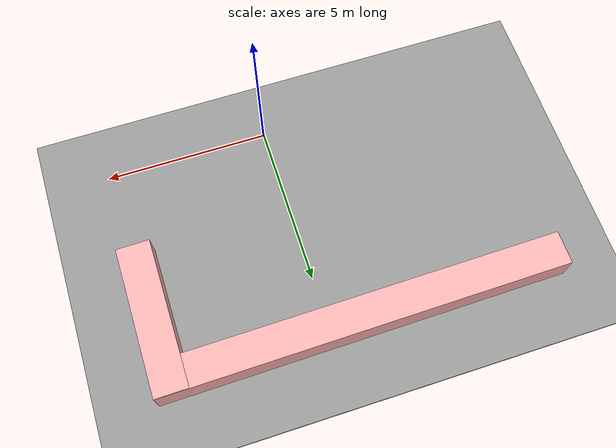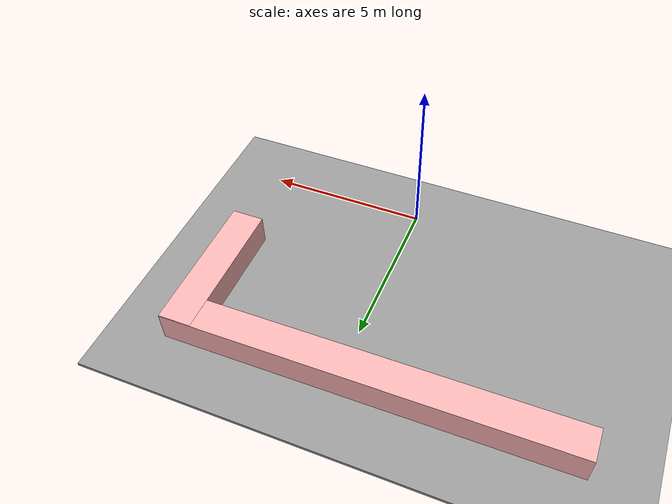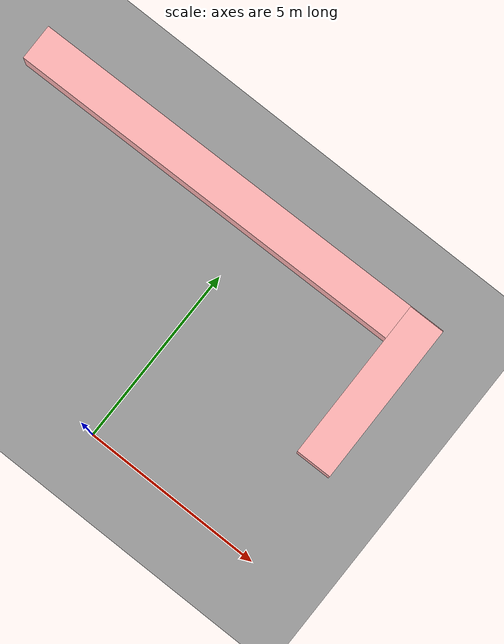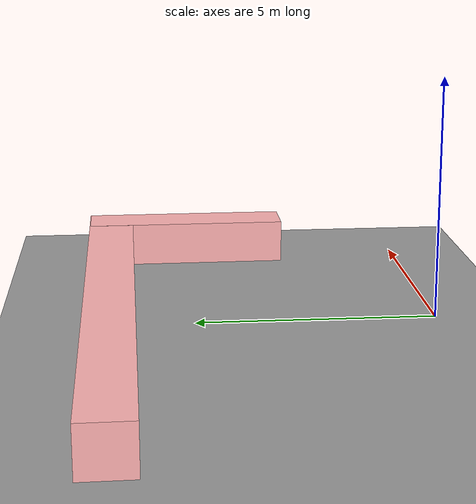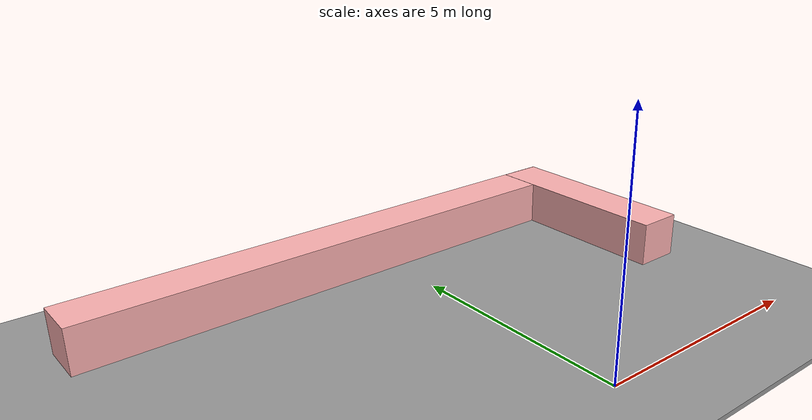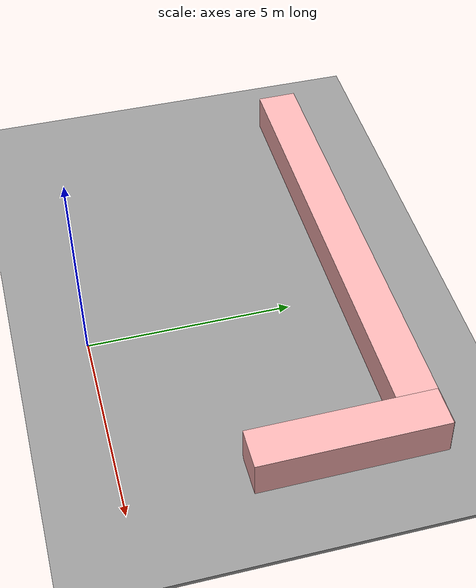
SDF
<sdf version="1.6">
 <world name="default">
  <model name="ground_plane">
   <static>1</static>
   <link name="link">
    <collision name="collision">
     <geometry><plane><normal>0 0 1</normal><size>100 100</size></plane></geometry>
     <surface><friction><ode><mu>100</mu><mu2>50</mu2></ode></friction></surface>
    </collision>
    <visual name="visual">
     <cast_shadows>0</cast_shadows>
     <geometry><plane><normal>0 0 1</normal><size>100 100</size></plane></geometry>
     <material>
      <script><uri>file://media/materials/scripts/gazebo.material</uri><name>Gazebo/Grey</name></script>
     </material>
    </visual>
   </link>
  </model>
  <model name="asphalt_plane_0_0">
   <link name="link">
    <inertial>
     <mass>1</mass>
     <inertia><ixx>1</ixx><ixy>0</ixy><ixz>0</ixz><iyy>1</iyy><iyz>0</iyz><izz>1</izz></inertia>
    </inertial>
    <visual name="visual">
     <cast_shadows>0</cast_shadows>
     <geometry><box><size>84.0868 136.428 0.1</size></box></geometry>
     <material>
      <script>
       <uri>model://asphalt_plane/materials/scripts</uri>
       <uri>model://asphalt_plane/materials/textures</uri>
       <name>Gazebo/Grey</name>
      </script>
      <ambient>0.1 0.1 0.1 1</ambient>
      <diffuse>0.1 0.1 0.1 1</diffuse>
      <specular>0.1 0.1 0.1 1</specular>
      <emissive>0 0 0 1</emissive>
      <shader type="vertex"><normal_map>__default__</normal_map></shader>
     </material>
    </visual>
    <collision name="collision">
     <geometry><box><size>84.0868 136.428 0.1</size></box></geometry>
     <surface>
      <friction>
       <ode><mu>1</mu><mu2>1</mu2><fdir1>0 0 0</fdir1><slip1>0</slip1><slip2>0</slip2></ode>
       <torsional>
        <coefficient>1</coefficient>
        <patch_radius>0</patch_radius>
        <surface_radius>0</surface_radius>
        <use_patch_radius>1</use_patch_radius>
        <ode><slip>0</slip></ode>
       </torsional>
      </friction>
      <bounce><restitution_coefficient>0</restitution_coefficient><threshold>1e+06</threshold></bounce>
      <contact>
       <collide_without_contact>0</collide_without_contact>
       <collide_without_contact_bitmask>1</collide_without_contact_bitmask>
       <collide_bitmask>1</collide_bitmask>
       <ode>
        <soft_cfm>0</soft_cfm>
        <soft_erp>0.2</soft_erp>
        <kp>1e+13</kp>
        <kd>1</kd>
        <max_vel>0.01</max_vel>
        <min_depth>0</min_depth>
       </ode>
       <bullet>
        <split_impulse>1</split_impulse>
        <split_impulse_penetration_threshold>-0.01</split_impulse_penetration_threshold>
        <soft_cfm>0</soft_cfm>
        <soft_erp>0.2</soft_erp>
        <kp>1e+13</kp>
        <kd>1</kd>
       </bullet>
      </contact>
     </surface>
    </collision>
   </link>
   <static>1</static>
   <pose>-0.546096 1.98012 0 0 -0 0</pose>
  </model>
  <model name="unit_box_0_clone_0_0_clone_clone_0_clone_clone_clone_0_0_clone_clone_0">
   <link name="link">
    <inertial>
     <mass>1</mass>
     <inertia>
      <ixx>0.166667</ixx>
      <ixy>0</ixy>
      <ixz>0</ixz>
      <iyy>0.166667</iyy>
      <iyz>0</iyz>
      <izz>0.166667</izz>
     </inertia>
    </inertial>
    <visual name="visual">
     <geometry><box><size>1 12.2515 1</size></box></geometry>
     <material>
      <script><name>Gazebo/Grey</name><uri>file://media/materials/scripts/gazebo.material</uri></script>
      <ambient>0.6 0.3 0.3 1</ambient>
      <diffuse>1 0.7 0.7 1</diffuse>
      <specular>0.31 0.01 0.01 1</specular>
      <emissive>0.7 0.7 0.7 1</emissive>
      <shader type="vertex"><normal_map>__default__</normal_map></shader>
     </material>
    </visual>
    <collision name="collision">
     <geometry><box><size>1 12.2515 1</size></box></geometry>
     <surface>
      <friction>
       <ode><mu>1</mu><mu2>1</mu2><fdir1>0 0 0</fdir1><slip1>0</slip1><slip2>0</slip2></ode>
       <torsional>
        <coefficient>1</coefficient>
        <patch_radius>0</patch_radius>
        <surface_radius>0</surface_radius>
        <use_patch_radius>1</use_patch_radius>
        <ode><slip>0</slip></ode>
       </torsional>
      </friction>
      <bounce><restitution_coefficient>0</restitution_coefficient><threshold>1e+06</threshold></bounce>
      <contact>
       <collide_without_contact>0</collide_without_contact>
       <collide_without_contact_bitmask>1</collide_without_contact_bitmask>
       <collide_bitmask>1</collide_bitmask>
       <ode>
        <soft_cfm>0</soft_cfm>
        <soft_erp>0.2</soft_erp>
        <kp>1e+13</kp>
        <kd>1</kd>
        <max_vel>0.01</max_vel>
        <min_depth>0</min_depth>
       </ode>
       <bullet>
        <split_impulse>1</split_impulse>
        <split_impulse_penetration_threshold>-0.01</split_impulse_penetration_threshold>
        <soft_cfm>0</soft_cfm>
        <soft_erp>0.2</soft_erp>
        <kp>1e+13</kp>
        <kd>1</kd>
       </bullet>
      </contact>
     </surface>
    </collision>
   </link>
   <static>1</static>
   <pose>-0.959818 6.7098 0.499628 3.14159 -0.000573 1.58078</pose>
  </model>
  <model name="unit_box_0_clone_0_0_clone_clone_0_clone_clone_clone_0_clone_clone_0_0_0">
   <link name="link">
    <inertial>
     <mass>1</mass>
     <inertia>
      <ixx>0.166667</ixx>
      <ixy>0</ixy>
      <ixz>0</ixz>
      <iyy>0.166667</iyy>
      <iyz>0</iyz>
      <izz>0.166667</izz>
     </inertia>
    </inertial>
    <visual name="visual">
     <geometry><box><size>1 4.48154 1</size></box></geometry>
     <material>
      <script><name>Gazebo/Grey</name><uri>file://media/materials/scripts/gazebo.material</uri></script>
      <ambient>0.6 0.3 0.3 1</ambient>
      <diffuse>1 0.7 0.7 1</diffuse>
      <specular>0.31 0.01 0.01 1</specular>
      <emissive>0.7 0.7 0.7 1</emissive>
      <shader type="vertex"><normal_map>__default__</normal_map></shader>
     </material>
    </visual>
    <collision name="collision">
     <geometry><box><size>1 4.48154 1</size></box></geometry>
     <surface>
      <friction>
       <ode><mu>1</mu><mu2>1</mu2><fdir1>0 0 0</fdir1><slip1>0</slip1><slip2>0</slip2></ode>
       <torsional>
        <coefficient>1</coefficient>
        <patch_radius>0</patch_radius>
        <surface_radius>0</surface_radius>
        <use_patch_radius>1</use_patch_radius>
        <ode><slip>0</slip></ode>
       </torsional>
      </friction>
      <bounce><restitution_coefficient>0</restitution_coefficient><threshold>1e+06</threshold></bounce>
      <contact>
       <collide_without_contact>0</collide_without_contact>
       <collide_without_contact_bitmask>1</collide_without_contact_bitmask>
       <collide_bitmask>1</collide_bitmask>
       <ode>
        <soft_cfm>0</soft_cfm>
        <soft_erp>0.2</soft_erp>
        <kp>1e+13</kp>
        <kd>1</kd>
        <max_vel>0.01</max_vel>
        <min_depth>0</min_depth>
       </ode>
       <bullet>
        <split_impulse>1</split_impulse>
        <split_impulse_penetration_threshold>-0.01</split_impulse_penetration_threshold>
        <soft_cfm>0</soft_cfm>
        <soft_erp>0.2</soft_erp>
        <kp>1e+13</kp>
        <kd>1</kd>
       </bullet>
      </contact>
     </surface>
    </collision>
   </link>
   <static>1</static>
   <pose>4.68506 5.01169 0.49975 -3.14102 -0 0.006143</pose>
  </model>
 </world>
</sdf>
